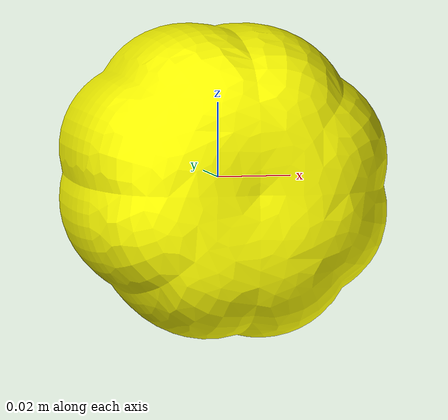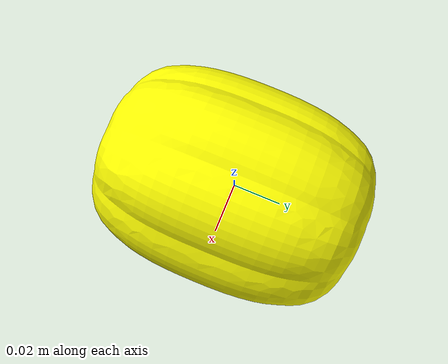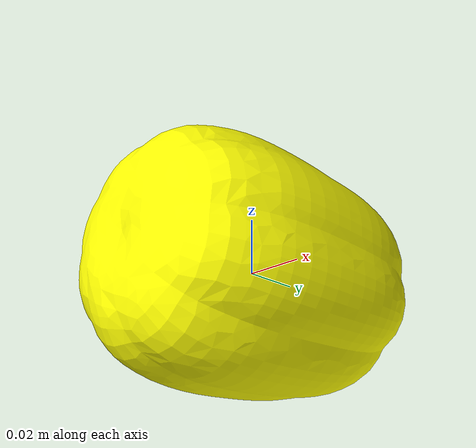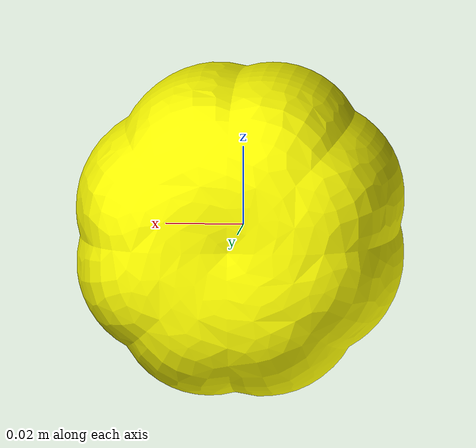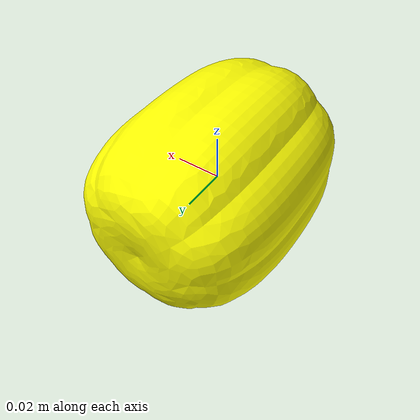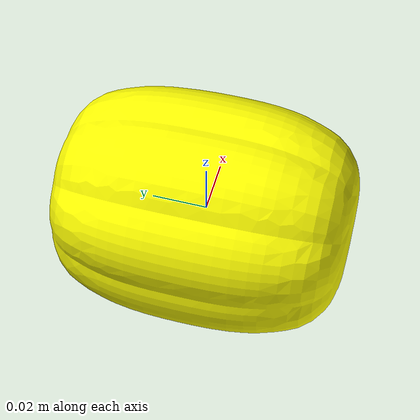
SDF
<?xml version="1.0" ?>
<sdf version="1.5">
  <model name="chamoe">
    <static>false</static>
    <link name="link">
      <collision name="collision">
        <geometry>
          <mesh>
            <uri>model://chamoe/meshes/chamoe.stl</uri>
          </mesh>
        </geometry>
        <surface>
          <contact>
             <collide_bitmask>0xffff</collide_bitmask>
          </contact>
          <friction>
            <ode>
              <mu>100</mu>
              <mu2>50</mu2>
            </ode>
          </friction>
        </surface>
      </collision>
      <visual name="visual">
        <cast_shadows>false</cast_shadows>
        <geometry>
          <mesh>
            <uri>model://chamoe/meshes/chamoe.stl</uri>
          </mesh>
        </geometry>
        <material>
          <ambient>1 1 0 1</ambient>
          <diffuse>1 1 0 1</diffuse>
        </material>
      </visual>
    </link>
  </model>
</sdf>
